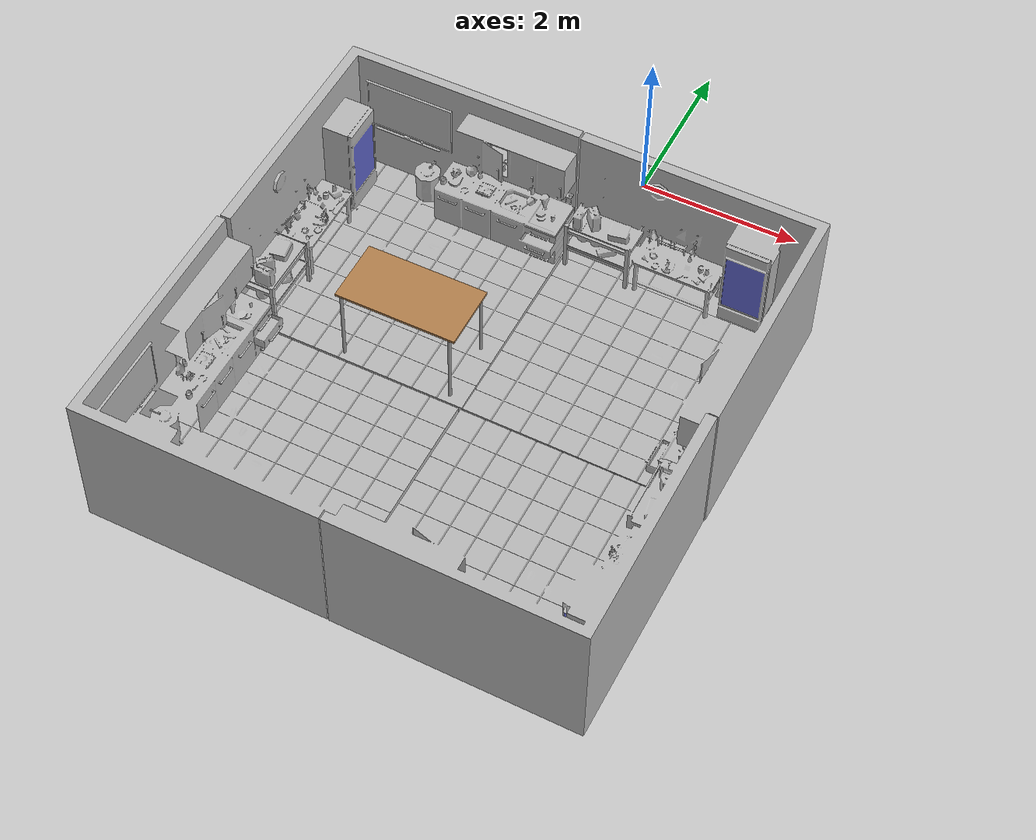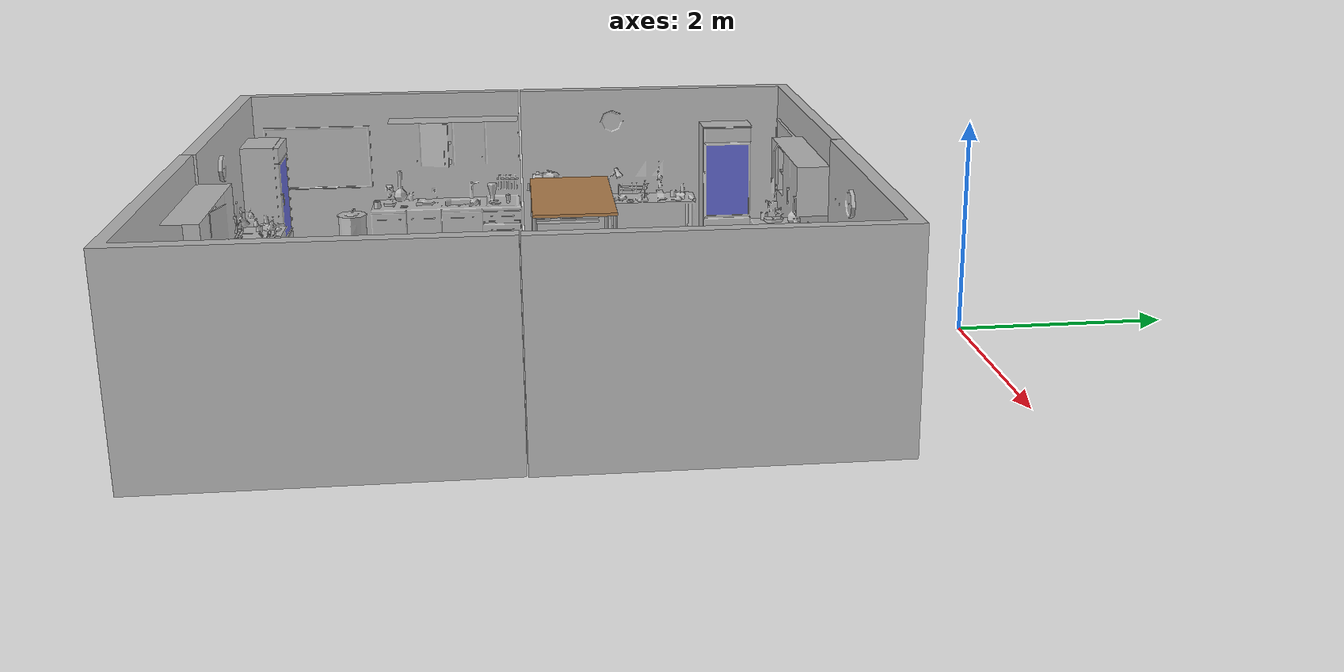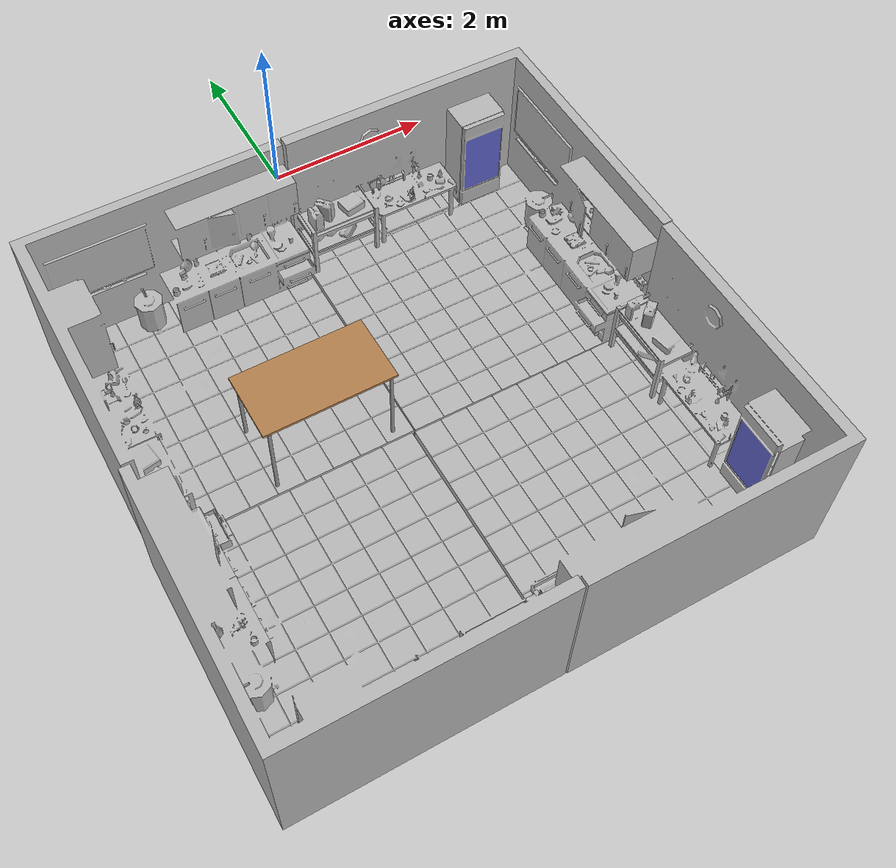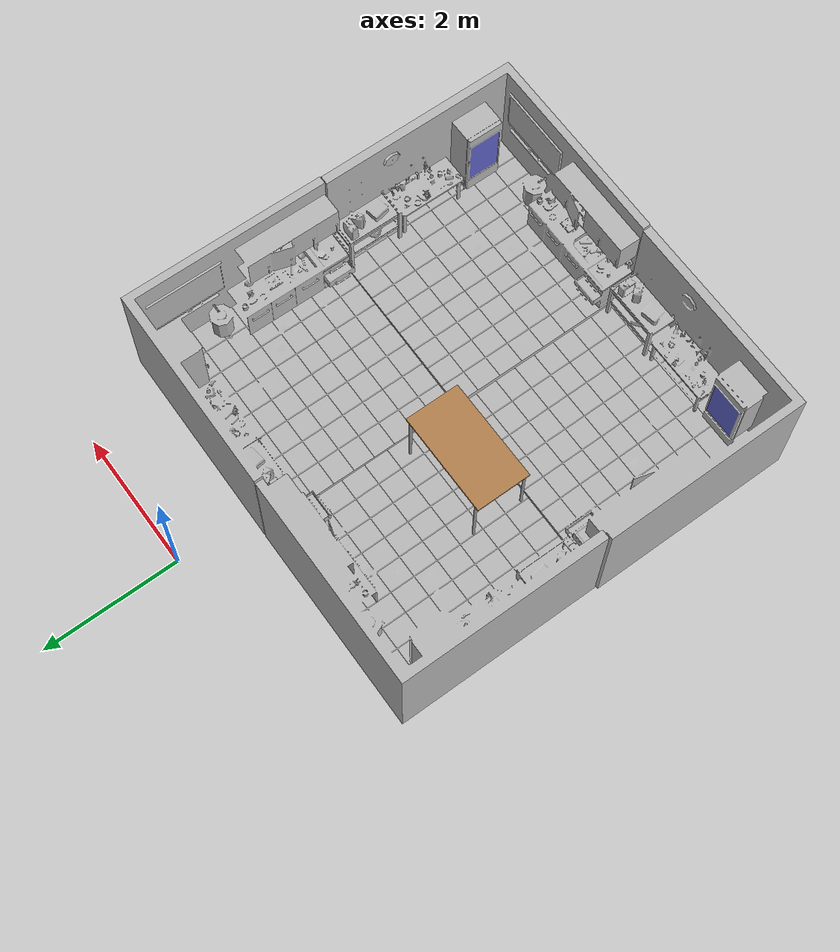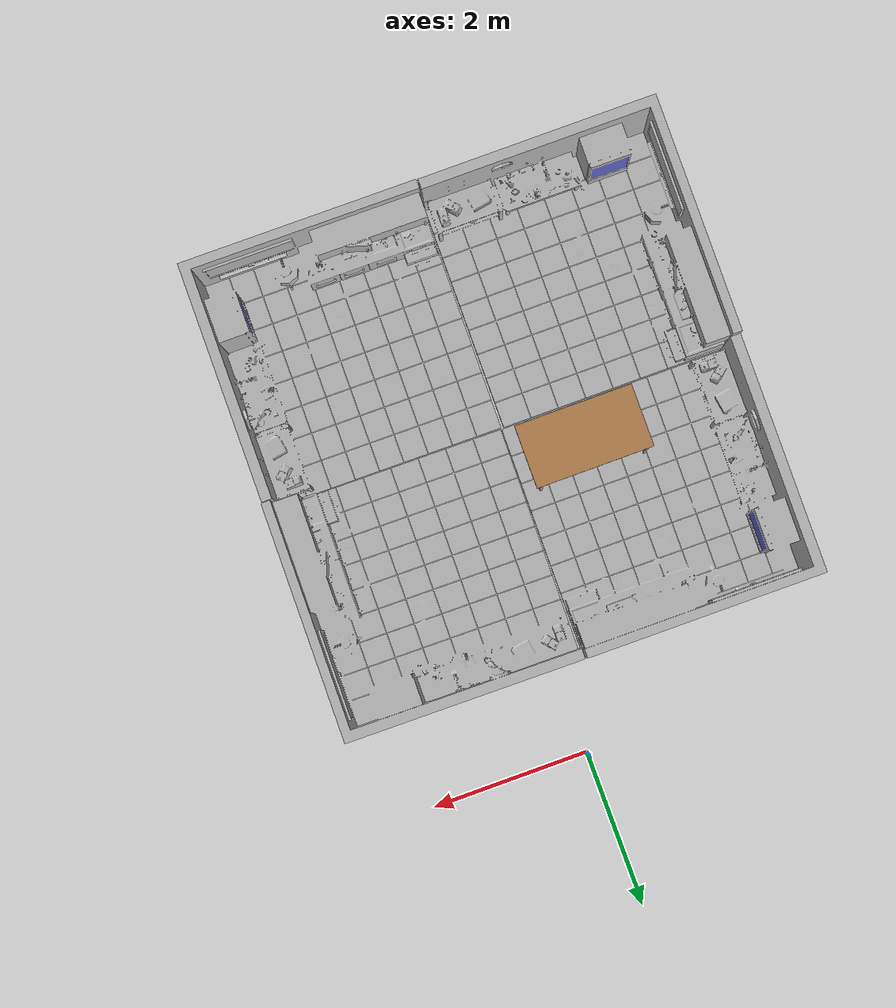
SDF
<sdf version='1.9'>
  <world name='empty'>
    <physics name='1ms' type='ignored'>
      <max_step_size>0.01</max_step_size>
      <real_time_factor>1</real_time_factor>
      <real_time_update_rate>1000</real_time_update_rate>
    </physics>
    <plugin name='gz::sim::systems::Physics' filename='ignition-gazebo-physics-system'/>
    <plugin name='gz::sim::systems::UserCommands' filename='ignition-gazebo-user-commands-system'/>
    <plugin name='gz::sim::systems::SceneBroadcaster' filename='ignition-gazebo-scene-broadcaster-system'/>
    <plugin name='gz::sim::systems::Contact' filename='ignition-gazebo-contact-system'/>
    <gravity>0 0 -9.8</gravity>
    <magnetic_field>6e-06 2.3e-05 -4.2e-05</magnetic_field>
    <atmosphere type='adiabatic'/>
    <scene>
      <ambient>0.4 0.4 0.4 1</ambient>
      <background>0.7 0.7 0.7 1</background>
      <shadows>true</shadows>
    </scene>
    <model name="camera_model">
      <static>true</static>
      <pose>-1.7 -3.30 1.14 0 0 0</pose> <!-- Position: x, y, z and Orientation: roll, pitch, yaw -->
      <link name="camera_link">
        <sensor name="camera_sensor" type="camera">
          <pose>0 0 0 0 0 0</pose> <!-- Position and orientation relative to the link -->
          <camera>
            <horizontal_fov>1.047</horizontal_fov> <!-- Field of view in radians -->
            <image>
              <width>640</width>
              <height>480</height>
              <format>R8G8B8</format>
            </image>
            <clip>
              <near>0.1</near>
              <far>100</far>
            </clip>
          </camera>
          <update_rate>30</update_rate> <!-- Frames per second -->
        </sensor>
      </link>
    </model>
    <model name='lab'>
      <static>true</static>
      <link name='link'>
        <collision name='collision'>
          <geometry>
            <mesh>
              <scale>1.5 1.5 1.5</scale>
              <uri>file:///workspaces/robo_arm_ws/install/a3c_gazebo/share/a3c_gazebo/models/lab/model://lab/meshes/lab.dae</uri>
            </mesh>
          </geometry>
        </collision>
        <visual name='visual'>
          <geometry>
            <mesh>
              <scale>1.5 1.5 1.5</scale>
              <uri>file:///workspaces/robo_arm_ws/install/a3c_gazebo/share/a3c_gazebo/models/lab/model://lab/meshes/lab.dae</uri>
            </mesh>
          </geometry>
        </visual>
        <pose>0 0 0 0 -0 0</pose>
        <inertial>
          <pose>0 0 0 0 -0 0</pose>
          <mass>1</mass>
          <inertia>
            <ixx>1</ixx>
            <ixy>0</ixy>
            <ixz>0</ixz>
            <iyy>1</iyy>
            <iyz>0</iyz>
            <izz>1</izz>
          </inertia>
        </inertial>
        <enable_wind>false</enable_wind>
      </link>
      <pose>-1.81013 -2.8557 0 0 0 -0.00371</pose>
      <self_collide>false</self_collide>
    </model>
    <model name='lab_0'>
      <static>true</static>
      <link name='link'>
        <collision name='collision'>
          <geometry>
            <mesh>
              <scale>1.5 1.5 1.5</scale>
              <uri>file:///workspaces/robo_arm_ws/install/a3c_gazebo/share/a3c_gazebo/models/lab/model://lab/meshes/lab.dae</uri>
            </mesh>
          </geometry>
        </collision>
        <visual name='visual'>
          <geometry>
            <mesh>
              <scale>1.5 1.5 1.5</scale>
              <uri>file:///workspaces/robo_arm_ws/install/a3c_gazebo/share/a3c_gazebo/models/lab/model://lab/meshes/lab.dae</uri>
            </mesh>
          </geometry>
        </visual>
        <pose>0 0 0 0 -0 0</pose>
        <inertial>
          <pose>0 0 0 0 -0 0</pose>
          <mass>1</mass>
          <inertia>
            <ixx>1</ixx>
            <ixy>0</ixy>
            <ixz>0</ixz>
            <iyy>1</iyy>
            <iyz>0</iyz>
            <izz>1</izz>
          </inertia>
        </inertial>
        <enable_wind>false</enable_wind>
      </link>
      <pose>0.900488 -2.67254 0 0 0 -1.58031</pose>
      <self_collide>false</self_collide>
    </model>
    <model name='lab_1'>
      <static>true</static>
      <link name='link'>
        <collision name='collision'>
          <geometry>
            <mesh>
              <scale>1.5 1.5 1.5</scale>
              <uri>file:///workspaces/robo_arm_ws/install/a3c_gazebo/share/a3c_gazebo/models/lab/model://lab/meshes/lab.dae</uri>
            </mesh>
          </geometry>
        </collision>
        <visual name='visual'>
          <geometry>
            <mesh>
              <scale>1.5 1.5 1.5</scale>
              <uri>file:///workspaces/robo_arm_ws/install/a3c_gazebo/share/a3c_gazebo/models/lab/model://lab/meshes/lab.dae</uri>
            </mesh>
          </geometry>
        </visual>
        <pose>0 0 0 0 -0 0</pose>
        <inertial>
          <pose>0 0 0 0 -0 0</pose>
          <mass>1</mass>
          <inertia>
            <ixx>1</ixx>
            <ixy>0</ixy>
            <ixz>0</ixz>
            <iyy>1</iyy>
            <iyz>0</iyz>
            <izz>1</izz>
          </inertia>
        </inertial>
        <enable_wind>false</enable_wind>
      </link>
      <pose>-1.64737 -5.56313 -0.005599 0 -0 1.56879</pose>
      <self_collide>false</self_collide>
    </model>
    <model name='lab_2'>
      <static>true</static>
      <link name='link'>
        <collision name='collision'>
          <geometry>
            <mesh>
              <scale>1.5 1.5 1.5</scale>
              <uri>file:///workspaces/robo_arm_ws/install/a3c_gazebo/share/a3c_gazebo/models/lab/model://lab/meshes/lab.dae</uri>
            </mesh>
          </geometry>
        </collision>
        <visual name='visual'>
          <geometry>
            <mesh>
              <scale>1.5 1.5 1.5</scale>
              <uri>file:///workspaces/robo_arm_ws/install/a3c_gazebo/share/a3c_gazebo/models/lab/model://lab/meshes/lab.dae</uri>
            </mesh>
          </geometry>
        </visual>
        <pose>0 0 0 0 -0 0</pose>
        <inertial>
          <pose>0 0 0 0 -0 0</pose>
          <mass>1</mass>
          <inertia>
            <ixx>1</ixx>
            <ixy>0</ixy>
            <ixz>0</ixz>
            <iyy>1</iyy>
            <iyz>0</iyz>
            <izz>1</izz>
          </inertia>
        </inertial>
        <enable_wind>false</enable_wind>
      </link>
      <pose>1.06901 -5.3784 0 0 -0 3.13531</pose>
      <self_collide>false</self_collide>
    </model>
    <model name='Table'>
      <static>true</static>
      <link name='link'>
        <visual name='visual1'>
          <pose>0 0 1.0 0 0 0</pose>
          <geometry>
            <box>
              <size>1.5 0.8 0.03</size>
            </box>
          </geometry>
          <material>
            <diffuse>1 1 1 1</diffuse>
            <script>
              <uri>file://media/materials/scripts/gazebo.material</uri>
              <name>Gazebo/Wood</name>
            </script>
            <pbr>
              <metal>
                <albedo_map>model://Table/Table_Diffuse.jpg</albedo_map>
              </metal>
            </pbr>
          </material>
        </visual>
        <collision name='front_left_leg'>
          <pose>0.68 0.38 0.5 0 0 0</pose>
          <geometry>
            <cylinder>
              <radius>0.02</radius>
              <length>1</length>
            </cylinder>
          </geometry>
          <surface>
            <friction>
              <ode/>
            </friction>
            <bounce/>
            <contact/>
          </surface>
        </collision>
        <visual name='front_left_leg'>
          <pose>0.68 0.38 0.5 0 0 0</pose>
          <geometry>
            <cylinder>
              <radius>0.02</radius>
              <length>1</length>
            </cylinder>
          </geometry>
          <material>
            <diffuse>0.5 0.5 0.5 1</diffuse>
            <script>
              <uri>file://media/materials/scripts/gazebo.material</uri>
              <name>Gazebo/Grey</name>
            </script>
          </material>
        </visual>
        <collision name='front_right_leg'>
          <pose>0.68 -0.38 0.5 0 0 0</pose>
          <geometry>
            <cylinder>
              <radius>0.02</radius>
              <length>1</length>
            </cylinder>
          </geometry>
          <surface>
            <friction>
              <ode/>
            </friction>
            <bounce/>
            <contact/>
          </surface>
        </collision>
        <visual name='front_right_leg'>
          <pose>0.68 -0.38 0.5 0 0 0</pose>
          <geometry>
            <cylinder>
              <radius>0.02</radius>
              <length>1</length>
            </cylinder>
          </geometry>
          <material>
            <diffuse>0.5 0.5 0.5 1</diffuse>
            <script>
              <uri>file://media/materials/scripts/gazebo.material</uri>
              <name>Gazebo/Grey</name>
            </script>
          </material>
        </visual>
        <collision name='back_right_leg'>
          <pose>-0.68 -0.38 0.5 0 0 0</pose>
          <geometry>
            <cylinder>
              <radius>0.02</radius>
              <length>1</length>
            </cylinder>
          </geometry>
          <surface>
            <friction>
              <ode/>
            </friction>
            <bounce/>
            <contact/>
          </surface>
        </collision>
        <visual name='back_right_leg'>
          <pose>-0.68 -0.38 0.5 0 0 0</pose>
          <geometry>
            <cylinder>
              <radius>0.02</radius>
              <length>1</length>
            </cylinder>
          </geometry>
          <material>
            <diffuse>0.5 0.5 0.5 1</diffuse>
            <script>
              <uri>file://media/materials/scripts/gazebo.material</uri>
              <name>Gazebo/Grey</name>
            </script>
          </material>
        </visual>
        <collision name='back_left_leg'>
          <pose>-0.68 0.38 0.5 0 0 0</pose>
          <geometry>
            <cylinder>
              <radius>0.02</radius>
              <length>1</length>
            </cylinder>
          </geometry>
          <surface>
            <friction>
              <ode/>
            </friction>
            <bounce/>
            <contact/>
          </surface>
        </collision>
        <visual name='back_left_leg'>
          <pose>-0.68 0.38 0.5 0 0 0</pose>
          <geometry>
            <cylinder>
              <radius>0.02</radius>
              <length>1</length>
            </cylinder>
          </geometry>
          <material>
            <diffuse>0.5 0.5 0.5 1</diffuse>
            <script>
              <uri>file://media/materials/scripts/gazebo.material</uri>
              <name>Gazebo/Grey</name>
            </script>
          </material>
        </visual>
        <pose>0 0 0 0 -0 0</pose>
        <inertial>
          <pose>0 0 0 0 -0 0</pose>
          <mass>1</mass>
          <inertia>
            <ixx>1</ixx>
            <ixy>0</ixy>
            <ixz>0</ixz>
            <iyy>1</iyy>
            <iyz>0</iyz>
            <izz>1</izz>
          </inertia>
        </inertial>
        <enable_wind>false</enable_wind>
      </link>
      <pose>-1.25 -3.62 0.10 0 -0 0</pose>
      <self_collide>false</self_collide>
    </model>
    <light name='sun' type='directional'>
      <pose>0 0 10 0 -0 0</pose>
      <cast_shadows>true</cast_shadows>
      <intensity>1</intensity>
      <direction>-0.5 0.1 -0.9</direction>
      <diffuse>0.8 0.8 0.8 1</diffuse>
      <specular>0.2 0.2 0.2 1</specular>
      <attenuation>
        <range>1000</range>
        <linear>0.01</linear>
        <constant>0.90000000000000002</constant>
        <quadratic>0.001</quadratic>
      </attenuation>
      <spot>
        <inner_angle>0</inner_angle>
        <outer_angle>0</outer_angle>
        <falloff>0</falloff>
      </spot>
    </light>
  </world>
</sdf>
